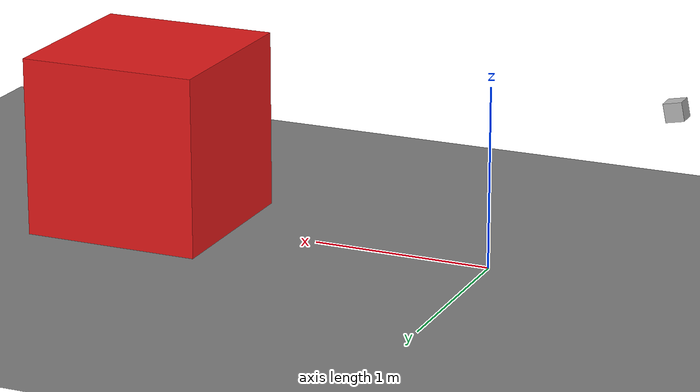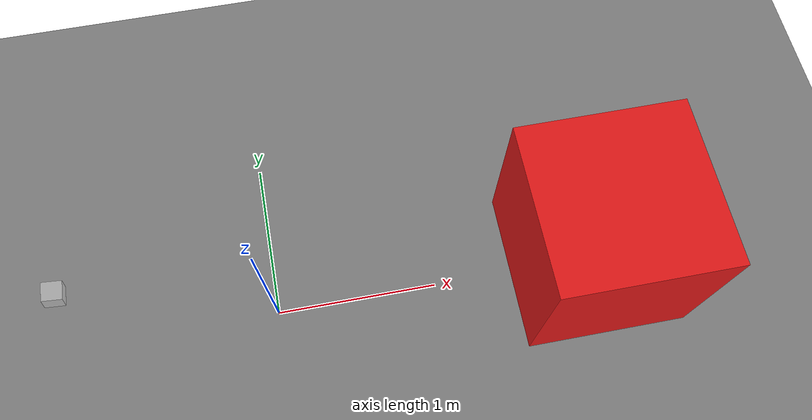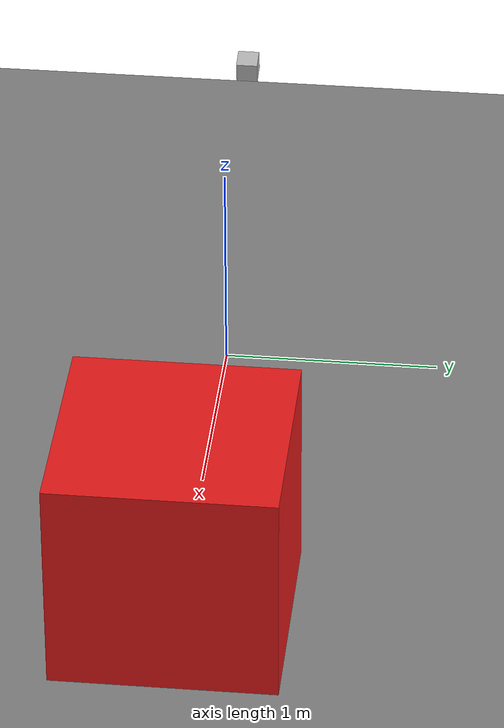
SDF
<?xml version="1.0"?>
<sdf version="1.9">
  <world name="camera_world">

    <physics name="1ms" type="ignored">
      <max_step_size>0.001</max_step_size>
      <real_time_factor>1.0</real_time_factor>
    </physics>

    <plugin filename="gz-sim-physics-system"
            name="gz::sim::systems::Physics"/>
    <plugin filename="gz-sim-user-commands-system"
            name="gz::sim::systems::UserCommands"/>
    <plugin filename="gz-sim-scene-broadcaster-system"
            name="gz::sim::systems::SceneBroadcaster"/>
    <plugin filename="gz-sim-sensors-system"
            name="gz::sim::systems::Sensors">
      <render_engine>ogre2</render_engine>
    </plugin>

    <light type="directional" name="sun">
      <cast_shadows>true</cast_shadows>
      <pose>0 0 10 0 0 0</pose>
      <diffuse>0.8 0.8 0.8 1</diffuse>
      <specular>0.2 0.2 0.2 1</specular>
      <direction>-0.5 0.1 -0.9</direction>
    </light>

    <model name="ground_plane">
      <static>true</static>
      <link name="link">
        <collision name="collision">
          <geometry><plane><normal>0 0 1</normal><size>20 20</size></plane></geometry>
        </collision>
        <visual name="visual">
          <geometry><plane><normal>0 0 1</normal><size>20 20</size></plane></geometry>
          <material>
            <ambient>0.3 0.3 0.3 1</ambient>
            <diffuse>0.5 0.5 0.5 1</diffuse>
          </material>
        </visual>
      </link>
    </model>

    <!-- Something colorful for the camera to look at. -->
    <model name="red_box">
      <pose>2 0 0.5 0 0 0</pose>
      <link name="link">
        <collision name="collision">
          <geometry><box><size>1 1 1</size></box></geometry>
        </collision>
        <visual name="visual">
          <geometry><box><size>1 1 1</size></box></geometry>
          <material>
            <ambient>0.8 0.1 0.1 1</ambient>
            <diffuse>0.9 0.1 0.1 1</diffuse>
          </material>
        </visual>
      </link>
    </model>

    <!-- Static camera on a post, pointing at the box. -->
    <model name="camera">
      <static>true</static>
      <pose>-1 0 1 0 0.2 0</pose>
      <link name="link">
        <visual name="visual">
          <geometry><box><size>0.1 0.1 0.1</size></box></geometry>
        </visual>
        <sensor name="camera_sensor" type="camera">
          <topic>camera/image</topic>
          <update_rate>30</update_rate>
          <always_on>true</always_on>
          <camera>
            <horizontal_fov>1.047</horizontal_fov>
            <image>
              <width>640</width>
              <height>480</height>
              <format>R8G8B8</format>
            </image>
            <clip><near>0.1</near><far>100</far></clip>
          </camera>
        </sensor>
      </link>
    </model>

  </world>
</sdf>
